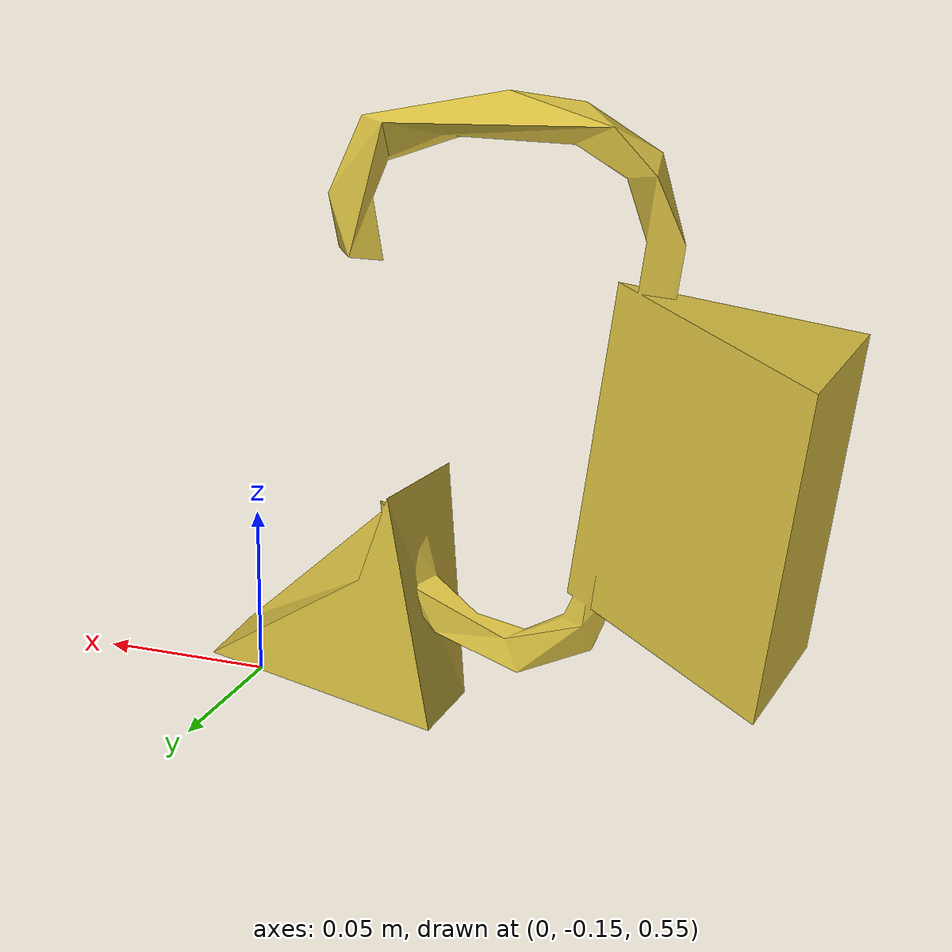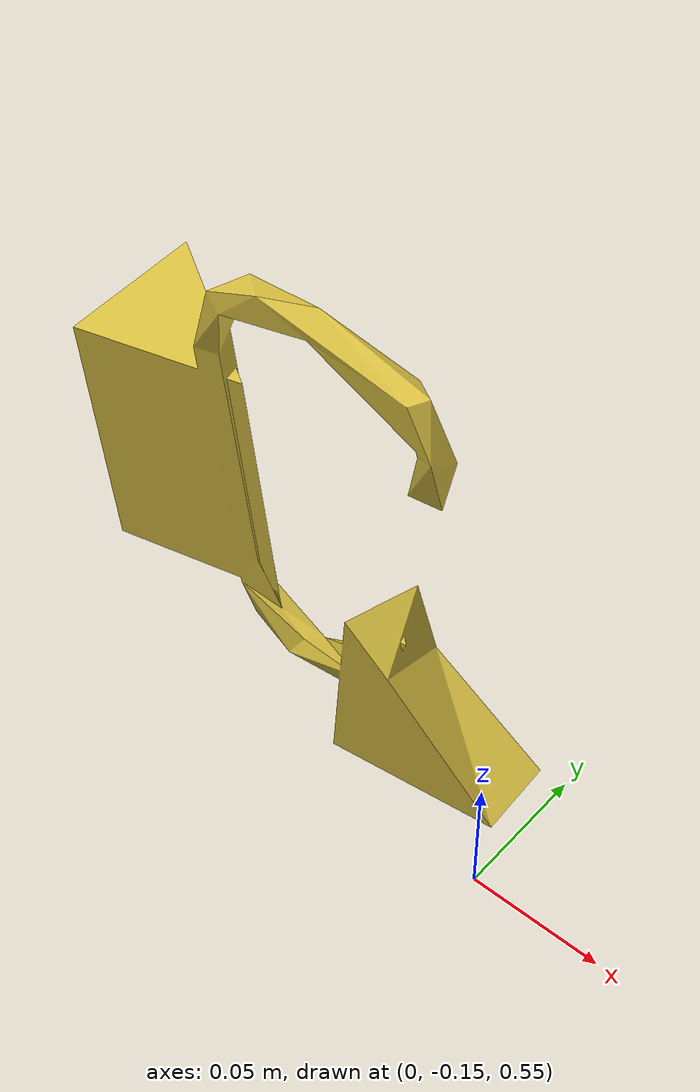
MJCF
<mujoco model="right_carabiner">
  <compiler inertiafromgeom="auto"/>
  <default>
    <default class="rcar_visual">
      <geom group="2" type="mesh" contype="0" conaffinity="0"/>
    </default>
    <default class="rcar_collision">
      <!-- contype=2 (carabiner bit); conaffinity=5 = grippers(1) | handles(4) -->
      <geom group="3" type="capsule" mass="0" contype="2" conaffinity="5"/>
    </default>
  </default>
  <asset>
    <mesh name="rcar_visual_mesh" file="simplified/simplified_carabiner/simplified_carabiner.obj" scale="0.001 0.001 0.001"/>
  </asset>
  <worldbody>
    <body name="right_carabiner" pos="-0.0877875 -0.1271625 0.6557975" quat="0.5 0.5 -0.5 -0.5">
      <freejoint/>
      <inertial pos="-0.006263 -0.034070 -0.030525" mass="0.242"
                quat="0.698782 0.129047 -0.667590 -0.222204"
                diaginertia="4.268038e-04 6.904647e-04 1.036829e-03"/>
      <geom mesh="rcar_visual_mesh" class="rcar_visual" rgba="0.85 0.75 0.25 1"/>
      <!-- 4-capsule decomposition: top arc, gate-inner, spine, bottom diagonal -->
      <geom class="rcar_collision" fromto="-0.00199  0.07200 -0.04200  -0.00199  0.07200  0.03800" size="0.01500"/>
      <geom class="rcar_collision" fromto="-0.00199  0.05000 -0.04200  -0.00199  0.03200 -0.04200" size="0.01100"/>
      <geom class="rcar_collision" fromto="-0.01692 -0.07000  0.05000  -0.01692  0.02200  0.05000" size="0.04000"/>
      <geom class="rcar_collision" fromto=" 0.00000 -0.07000 -0.06000   0.00000 -0.04000 -0.01000" size="0.02400"/>
    </body>
  </worldbody>
</mujoco>
